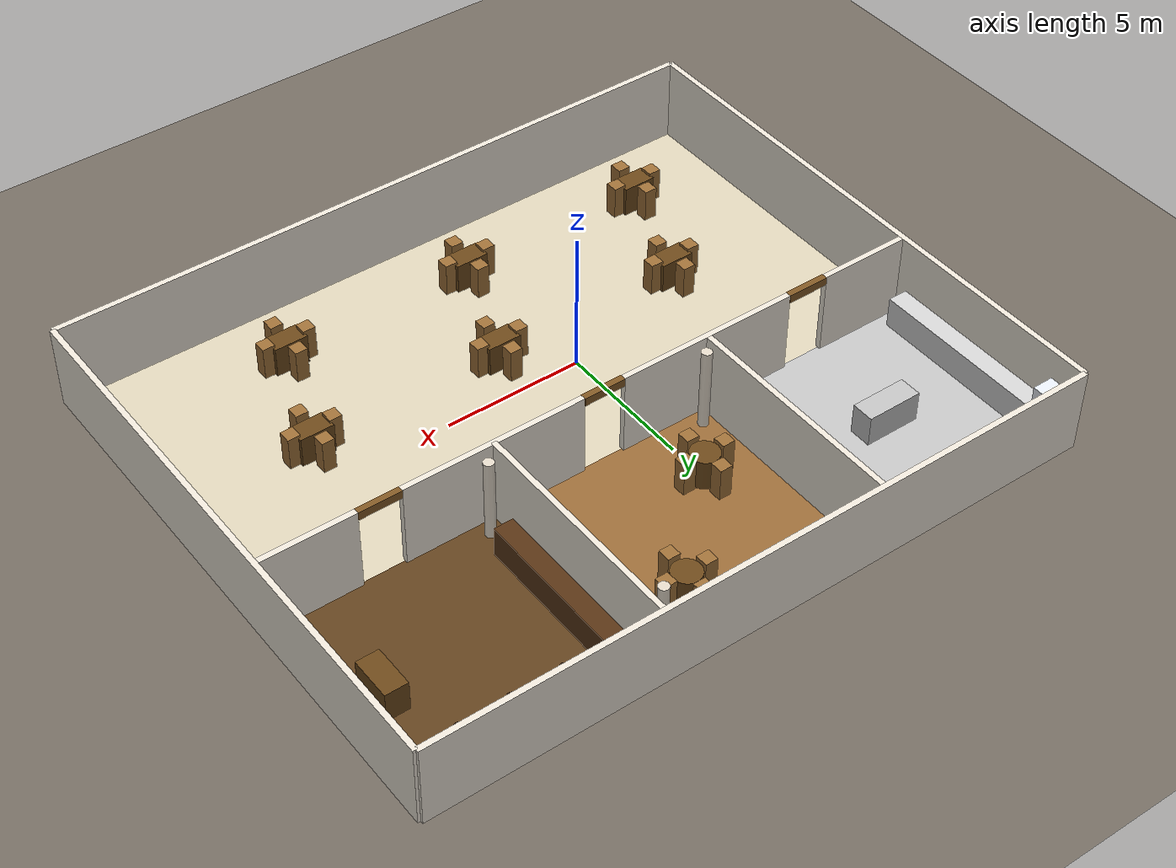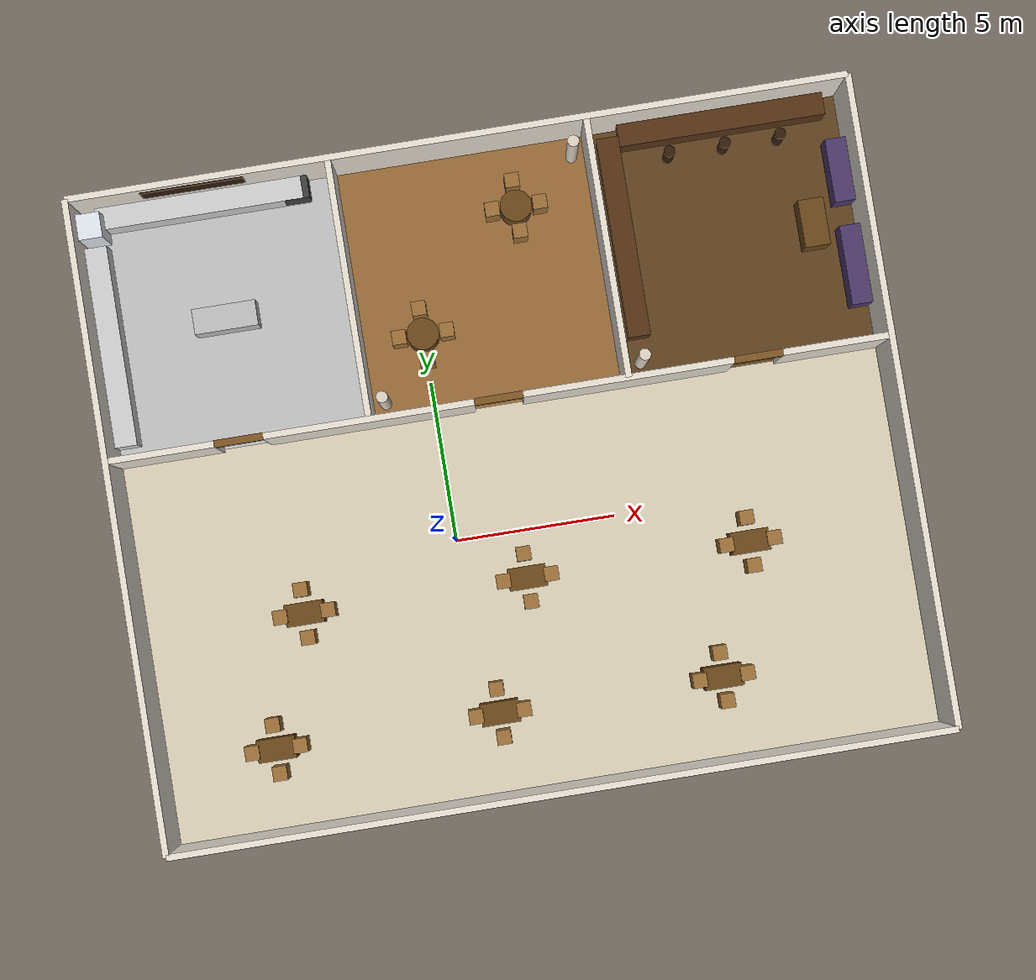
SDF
<?xml version="1.0" ?>
<sdf version="1.6">
  <world name="restaurant_world">

    <physics name="1ms" type="ignored">
      <max_step_size>0.001</max_step_size>
      <real_time_factor>1.0</real_time_factor>
    </physics>

    <plugin filename="ignition-gazebo-physics-system"
            name="ignition::gazebo::systems::Physics"/>
    <plugin filename="ignition-gazebo-user-commands-system"
            name="ignition::gazebo::systems::UserCommands"/>
    <plugin filename="ignition-gazebo-scene-broadcaster-system"
            name="ignition::gazebo::systems::SceneBroadcaster"/>
    <plugin filename="ignition-gazebo-sensors-system"
            name="ignition::gazebo::systems::Sensors">
      <render_engine>ogre2</render_engine>
    </plugin>
    <plugin filename="ignition-gazebo-imu-system"
            name="ignition::gazebo::systems::Imu"/>

    <!-- Sun -->
    <light type="directional" name="sun">
      <cast_shadows>true</cast_shadows>
      <pose>0 0 20 0 0 0</pose>
      <diffuse>0.95 0.92 0.85 1</diffuse>
      <specular>0.4 0.4 0.4 1</specular>
      <attenuation><range>1000</range><constant>0.9</constant>
        <linear>0.01</linear><quadratic>0.001</quadratic></attenuation>
      <direction>-0.4 0.1 -0.9</direction>
    </light>

    <!-- Main dining warm lights -->
    <light name="hall_light_1" type="point">
      <pose>-4 -4 4.5 0 0 0</pose>
      <diffuse>1.0 0.92 0.78 1</diffuse><specular>0.3 0.28 0.20 1</specular>
      <attenuation><range>15</range><constant>0.3</constant>
        <linear>0.04</linear><quadratic>0.008</quadratic></attenuation>
      <cast_shadows>false</cast_shadows>
    </light>
    <light name="hall_light_2" type="point">
      <pose>6 -4 4.5 0 0 0</pose>
      <diffuse>1.0 0.92 0.78 1</diffuse><specular>0.3 0.28 0.20 1</specular>
      <attenuation><range>15</range><constant>0.3</constant>
        <linear>0.04</linear><quadratic>0.008</quadratic></attenuation>
      <cast_shadows>false</cast_shadows>
    </light>

    <!-- Kitchen cool white light -->
    <light name="kitchen_light" type="point">
      <pose>-6 8.0 4.5 0 0 0</pose>
      <diffuse>0.88 0.92 1.0 1</diffuse><specular>0.22 0.24 0.28 1</specular>
      <attenuation><range>12</range><constant>0.4</constant>
        <linear>0.05</linear><quadratic>0.01</quadratic></attenuation>
      <cast_shadows>false</cast_shadows>
    </light>

    <!-- Private dining amber light -->
    <light name="private_light" type="point">
      <pose>2 8.0 4.5 0 0 0</pose>
      <diffuse>1.0 0.85 0.60 1</diffuse><specular>0.25 0.20 0.12 1</specular>
      <attenuation><range>12</range><constant>0.4</constant>
        <linear>0.05</linear><quadratic>0.01</quadratic></attenuation>
      <cast_shadows>false</cast_shadows>
    </light>

    <!-- Lounge dim warm light -->
    <light name="lounge_light" type="point">
      <pose>10 8.0 4.5 0 0 0</pose>
      <diffuse>0.95 0.80 0.55 1</diffuse><specular>0.20 0.16 0.10 1</specular>
      <attenuation><range>12</range><constant>0.4</constant>
        <linear>0.05</linear><quadratic>0.01</quadratic></attenuation>
      <cast_shadows>false</cast_shadows>
    </light>

    <!-- ══ GROUND ══ -->
    <model name="ground_plane"><static>true</static>
      <link name="link">
        <collision name="collision">
          <geometry><plane><normal>0 0 1</normal><size>100 100</size></plane></geometry>
          <surface><friction><ode><mu>50</mu><mu2>50</mu2></ode></friction></surface>
        </collision>
        <visual name="visual">
          <geometry><plane><normal>0 0 1</normal><size>100 100</size></plane></geometry>
          <material><ambient>0.45 0.42 0.38 1</ambient><diffuse>0.45 0.42 0.38 1</diffuse></material>
        </visual>
      </link>
    </model>

    <!-- ══ FLOOR TILES (visual only) ══ -->
    <model name="floor_main"><static>true</static><pose>2 -2 0.002 0 0 0</pose>
      <link name="link"><visual name="v">
        <geometry><box><size>24.0 12.0 0.004</size></box></geometry>
        <material><ambient>0.86 0.82 0.72 1</ambient><diffuse>0.86 0.82 0.72 1</diffuse>
          <specular>0.10 0.10 0.08 1</specular></material>
      </visual></link>
    </model>
    <model name="floor_kitchen"><static>true</static><pose>-6 8.0 0.002 0 0 0</pose>
      <link name="link"><visual name="v">
        <geometry><box><size>8.0 8.0 0.004</size></box></geometry>
        <material><ambient>0.76 0.76 0.76 1</ambient><diffuse>0.76 0.76 0.76 1</diffuse>
          <specular>0.22 0.22 0.22 1</specular></material>
      </visual></link>
    </model>
    <model name="floor_private"><static>true</static><pose>2 8.0 0.002 0 0 0</pose>
      <link name="link"><visual name="v">
        <geometry><box><size>8.0 8.0 0.004</size></box></geometry>
        <material><ambient>0.55 0.38 0.18 1</ambient><diffuse>0.60 0.42 0.22 1</diffuse>
          <specular>0.14 0.10 0.04 1</specular></material>
      </visual></link>
    </model>
    <model name="floor_lounge"><static>true</static><pose>10 8.0 0.002 0 0 0</pose>
      <link name="link"><visual name="v">
        <geometry><box><size>8.0 8.0 0.004</size></box></geometry>
        <material><ambient>0.32 0.22 0.10 1</ambient><diffuse>0.38 0.26 0.12 1</diffuse>
          <specular>0.18 0.12 0.06 1</specular></material>
      </visual></link>
    </model>

    <model name="wall_outer_south"><static>true</static><pose>2 -8.1 1.5 0 0 0</pose>
      <link name="link">
        <collision name="c"><geometry><box><size>24.2 0.2 3.0</size></box></geometry></collision>
        <visual name="v"><geometry><box><size>24.2 0.2 3.0</size></box></geometry>
          <material><ambient>0.92 0.89 0.84 1</ambient><diffuse>0.92 0.89 0.84 1</diffuse>
            <specular>0.08 0.08 0.07 1</specular></material></visual>
      </link>
    </model>
    <model name="wall_outer_north"><static>true</static><pose>2 12.1 1.5 0 0 0</pose>
      <link name="link">
        <collision name="c"><geometry><box><size>24.2 0.2 3.0</size></box></geometry></collision>
        <visual name="v"><geometry><box><size>24.2 0.2 3.0</size></box></geometry>
          <material><ambient>0.92 0.89 0.84 1</ambient><diffuse>0.92 0.89 0.84 1</diffuse>
            <specular>0.08 0.08 0.07 1</specular></material></visual>
      </link>
    </model>
    <model name="wall_outer_west"><static>true</static><pose>-10.1 2.0 1.5 0 0 0</pose>
      <link name="link">
        <collision name="c"><geometry><box><size>0.2 20.2 3.0</size></box></geometry></collision>
        <visual name="v"><geometry><box><size>0.2 20.2 3.0</size></box></geometry>
          <material><ambient>0.92 0.89 0.84 1</ambient><diffuse>0.92 0.89 0.84 1</diffuse>
            <specular>0.08 0.08 0.07 1</specular></material></visual>
      </link>
    </model>
    <model name="wall_outer_east"><static>true</static><pose>14.1 2.0 1.5 0 0 0</pose>
      <link name="link">
        <collision name="c"><geometry><box><size>0.2 20.2 3.0</size></box></geometry></collision>
        <visual name="v"><geometry><box><size>0.2 20.2 3.0</size></box></geometry>
          <material><ambient>0.92 0.89 0.84 1</ambient><diffuse>0.92 0.89 0.84 1</diffuse>
            <specular>0.08 0.08 0.07 1</specular></material></visual>
      </link>
    </model>

    <model name="wall_div_h_s1"><static>true</static><pose>-8.375 4.0 1.5 0 0 0</pose>
      <link name="link">
        <collision name="c"><geometry><box><size>3.25 0.2 3.0</size></box></geometry></collision>
        <visual name="v"><geometry><box><size>3.25 0.2 3.0</size></box></geometry>
          <material><ambient>0.92 0.89 0.84 1</ambient><diffuse>0.92 0.89 0.84 1</diffuse>
            <specular>0.08 0.08 0.07 1</specular></material></visual>
      </link>
    </model>
    <model name="wall_div_h_s2"><static>true</static><pose>-2.0 4.0 1.5 0 0 0</pose>
      <link name="link">
        <collision name="c"><geometry><box><size>6.5 0.2 3.0</size></box></geometry></collision>
        <visual name="v"><geometry><box><size>6.5 0.2 3.0</size></box></geometry>
          <material><ambient>0.92 0.89 0.84 1</ambient><diffuse>0.92 0.89 0.84 1</diffuse>
            <specular>0.08 0.08 0.07 1</specular></material></visual>
      </link>
    </model>
    <model name="wall_div_h_s3"><static>true</static><pose>6.0 4.0 1.5 0 0 0</pose>
      <link name="link">
        <collision name="c"><geometry><box><size>6.5 0.2 3.0</size></box></geometry></collision>
        <visual name="v"><geometry><box><size>6.5 0.2 3.0</size></box></geometry>
          <material><ambient>0.92 0.89 0.84 1</ambient><diffuse>0.92 0.89 0.84 1</diffuse>
            <specular>0.08 0.08 0.07 1</specular></material></visual>
      </link>
    </model>
    <model name="wall_div_h_s4"><static>true</static><pose>12.375 4.0 1.5 0 0 0</pose>
      <link name="link">
        <collision name="c"><geometry><box><size>3.25 0.2 3.0</size></box></geometry></collision>
        <visual name="v"><geometry><box><size>3.25 0.2 3.0</size></box></geometry>
          <material><ambient>0.92 0.89 0.84 1</ambient><diffuse>0.92 0.89 0.84 1</diffuse>
            <specular>0.08 0.08 0.07 1</specular></material></visual>
      </link>
    </model>

    <!-- Door frame headers (wood accent) -->
    <model name="door_hdr_kitchen"><static>true</static><pose>-6.0 4.0 2.85 0 0 0</pose>
      <link name="link"><visual name="v">
        <geometry><box><size>1.5 0.22 0.3</size></box></geometry>
        <material><ambient>0.42 0.28 0.10 1</ambient><diffuse>0.50 0.34 0.14 1</diffuse></material>
      </visual></link>
    </model>
    <model name="door_hdr_private"><static>true</static><pose>2.0 4.0 2.85 0 0 0</pose>
      <link name="link"><visual name="v">
        <geometry><box><size>1.5 0.22 0.3</size></box></geometry>
        <material><ambient>0.42 0.28 0.10 1</ambient><diffuse>0.50 0.34 0.14 1</diffuse></material>
      </visual></link>
    </model>
    <model name="door_hdr_lounge"><static>true</static><pose>10.0 4.0 2.85 0 0 0</pose>
      <link name="link"><visual name="v">
        <geometry><box><size>1.5 0.22 0.3</size></box></geometry>
        <material><ambient>0.42 0.28 0.10 1</ambient><diffuse>0.50 0.34 0.14 1</diffuse></material>
      </visual></link>
    </model>

    <!-- ══ VERTICAL DIVIDERS ══ -->
    <!-- Kitchen | Private  x=-2.0 -->
    <model name="wall_div_v_kp"><static>true</static><pose>-2.0 8.0 1.5 0 0 0</pose>
      <link name="link">
        <collision name="c"><geometry><box><size>0.2 8.0 3.0</size></box></geometry></collision>
        <visual name="v"><geometry><box><size>0.2 8.0 3.0</size></box></geometry>
          <material><ambient>0.92 0.89 0.84 1</ambient><diffuse>0.92 0.89 0.84 1</diffuse>
            <specular>0.08 0.08 0.07 1</specular></material></visual>
      </link>
    </model>
    <!-- Private | Lounge  x=+6.0 -->
    <model name="wall_div_v_pl"><static>true</static><pose>6.0 8.0 1.5 0 0 0</pose>
      <link name="link">
        <collision name="c"><geometry><box><size>0.2 8.0 3.0</size></box></geometry></collision>
        <visual name="v"><geometry><box><size>0.2 8.0 3.0</size></box></geometry>
          <material><ambient>0.92 0.89 0.84 1</ambient><diffuse>0.92 0.89 0.84 1</diffuse>
            <specular>0.08 0.08 0.07 1</specular></material></visual>
      </link>
    </model>

    <!-- ── Row 1  y=-5.5 ── -->
    <!-- Table 1  x=-6.5 -->
    <model name="t1"><static>true</static><pose>-6.5 -5.5 0.55 0 0 0</pose>
      <link name="link">
        <collision name="c"><geometry><box><size>1.2 0.7 1.1</size></box></geometry></collision>
        <visual name="v"><geometry><box><size>1.2 0.7 1.1</size></box></geometry>
          <material><ambient>0.35 0.22 0.08 1</ambient><diffuse>0.42 0.28 0.10 1</diffuse>
            <specular>0.15 0.10 0.04 1</specular></material></visual>
      </link>
    </model>
    <model name="c1n"><static>true</static><pose>-6.5 -4.75 0.6 0 0 0</pose>
      <link name="link">
        <collision name="c"><geometry><box><size>0.45 0.45 1.2</size></box></geometry></collision>
        <visual name="v"><geometry><box><size>0.45 0.45 1.2</size></box></geometry>
          <material><ambient>0.55 0.38 0.18 1</ambient><diffuse>0.62 0.44 0.22 1</diffuse></material></visual>
      </link>
    </model>
    <model name="c1s"><static>true</static><pose>-6.5 -6.25 0.6 0 0 0</pose>
      <link name="link">
        <collision name="c"><geometry><box><size>0.45 0.45 1.2</size></box></geometry></collision>
        <visual name="v"><geometry><box><size>0.45 0.45 1.2</size></box></geometry>
          <material><ambient>0.55 0.38 0.18 1</ambient><diffuse>0.62 0.44 0.22 1</diffuse></material></visual>
      </link>
    </model>
    <model name="c1e"><static>true</static><pose>-5.75 -5.5 0.6 0 0 0</pose>
      <link name="link">
        <collision name="c"><geometry><box><size>0.45 0.45 1.2</size></box></geometry></collision>
        <visual name="v"><geometry><box><size>0.45 0.45 1.2</size></box></geometry>
          <material><ambient>0.55 0.38 0.18 1</ambient><diffuse>0.62 0.44 0.22 1</diffuse></material></visual>
      </link>
    </model>
    <model name="c1w"><static>true</static><pose>-7.25 -5.5 0.6 0 0 0</pose>
      <link name="link">
        <collision name="c"><geometry><box><size>0.45 0.45 1.2</size></box></geometry></collision>
        <visual name="v"><geometry><box><size>0.45 0.45 1.2</size></box></geometry>
          <material><ambient>0.55 0.38 0.18 1</ambient><diffuse>0.62 0.44 0.22 1</diffuse></material></visual>
      </link>
    </model>

    <!-- Table 2  x=0.5 -->
    <model name="t2"><static>true</static><pose>0.5 -5.5 0.55 0 0 0</pose>
      <link name="link">
        <collision name="c"><geometry><box><size>1.2 0.7 1.1</size></box></geometry></collision>
        <visual name="v"><geometry><box><size>1.2 0.7 1.1</size></box></geometry>
          <material><ambient>0.35 0.22 0.08 1</ambient><diffuse>0.42 0.28 0.10 1</diffuse>
            <specular>0.15 0.10 0.04 1</specular></material></visual>
      </link>
    </model>
    <model name="c2n"><static>true</static><pose>0.5 -4.75 0.6 0 0 0</pose>
      <link name="link">
        <collision name="c"><geometry><box><size>0.45 0.45 1.2</size></box></geometry></collision>
        <visual name="v"><geometry><box><size>0.45 0.45 1.2</size></box></geometry>
          <material><ambient>0.55 0.38 0.18 1</ambient><diffuse>0.62 0.44 0.22 1</diffuse></material></visual>
      </link>
    </model>
    <model name="c2s"><static>true</static><pose>0.5 -6.25 0.6 0 0 0</pose>
      <link name="link">
        <collision name="c"><geometry><box><size>0.45 0.45 1.2</size></box></geometry></collision>
        <visual name="v"><geometry><box><size>0.45 0.45 1.2</size></box></geometry>
          <material><ambient>0.55 0.38 0.18 1</ambient><diffuse>0.62 0.44 0.22 1</diffuse></material></visual>
      </link>
    </model>
    <model name="c2e"><static>true</static><pose>1.25 -5.5 0.6 0 0 0</pose>
      <link name="link">
        <collision name="c"><geometry><box><size>0.45 0.45 1.2</size></box></geometry></collision>
        <visual name="v"><geometry><box><size>0.45 0.45 1.2</size></box></geometry>
          <material><ambient>0.55 0.38 0.18 1</ambient><diffuse>0.62 0.44 0.22 1</diffuse></material></visual>
      </link>
    </model>
    <model name="c2w"><static>true</static><pose>-0.25 -5.5 0.6 0 0 0</pose>
      <link name="link">
        <collision name="c"><geometry><box><size>0.45 0.45 1.2</size></box></geometry></collision>
        <visual name="v"><geometry><box><size>0.45 0.45 1.2</size></box></geometry>
          <material><ambient>0.55 0.38 0.18 1</ambient><diffuse>0.62 0.44 0.22 1</diffuse></material></visual>
      </link>
    </model>

    <!-- Table 3  x=7.5 -->
    <model name="t3"><static>true</static><pose>7.5 -5.5 0.55 0 0 0</pose>
      <link name="link">
        <collision name="c"><geometry><box><size>1.2 0.7 1.1</size></box></geometry></collision>
        <visual name="v"><geometry><box><size>1.2 0.7 1.1</size></box></geometry>
          <material><ambient>0.35 0.22 0.08 1</ambient><diffuse>0.42 0.28 0.10 1</diffuse>
            <specular>0.15 0.10 0.04 1</specular></material></visual>
      </link>
    </model>
    <model name="c3n"><static>true</static><pose>7.5 -4.75 0.6 0 0 0</pose>
      <link name="link">
        <collision name="c"><geometry><box><size>0.45 0.45 1.2</size></box></geometry></collision>
        <visual name="v"><geometry><box><size>0.45 0.45 1.2</size></box></geometry>
          <material><ambient>0.55 0.38 0.18 1</ambient><diffuse>0.62 0.44 0.22 1</diffuse></material></visual>
      </link>
    </model>
    <model name="c3s"><static>true</static><pose>7.5 -6.25 0.6 0 0 0</pose>
      <link name="link">
        <collision name="c"><geometry><box><size>0.45 0.45 1.2</size></box></geometry></collision>
        <visual name="v"><geometry><box><size>0.45 0.45 1.2</size></box></geometry>
          <material><ambient>0.55 0.38 0.18 1</ambient><diffuse>0.62 0.44 0.22 1</diffuse></material></visual>
      </link>
    </model>
    <model name="c3e"><static>true</static><pose>8.25 -5.5 0.6 0 0 0</pose>
      <link name="link">
        <collision name="c"><geometry><box><size>0.45 0.45 1.2</size></box></geometry></collision>
        <visual name="v"><geometry><box><size>0.45 0.45 1.2</size></box></geometry>
          <material><ambient>0.55 0.38 0.18 1</ambient><diffuse>0.62 0.44 0.22 1</diffuse></material></visual>
      </link>
    </model>
    <model name="c3w"><static>true</static><pose>6.75 -5.5 0.6 0 0 0</pose>
      <link name="link">
        <collision name="c"><geometry><box><size>0.45 0.45 1.2</size></box></geometry></collision>
        <visual name="v"><geometry><box><size>0.45 0.45 1.2</size></box></geometry>
          <material><ambient>0.55 0.38 0.18 1</ambient><diffuse>0.62 0.44 0.22 1</diffuse></material></visual>
      </link>
    </model>

    <!-- ── Row 2  y=-1.5 ── -->
    <!-- Table 4  x=-5.0 -->
    <model name="t4"><static>true</static><pose>-5.0 -1.5 0.55 0 0 0</pose>
      <link name="link">
        <collision name="c"><geometry><box><size>1.2 0.7 1.1</size></box></geometry></collision>
        <visual name="v"><geometry><box><size>1.2 0.7 1.1</size></box></geometry>
          <material><ambient>0.35 0.22 0.08 1</ambient><diffuse>0.42 0.28 0.10 1</diffuse>
            <specular>0.15 0.10 0.04 1</specular></material></visual>
      </link>
    </model>
    <model name="c4n"><static>true</static><pose>-5.0 -0.75 0.6 0 0 0</pose>
      <link name="link">
        <collision name="c"><geometry><box><size>0.45 0.45 1.2</size></box></geometry></collision>
        <visual name="v"><geometry><box><size>0.45 0.45 1.2</size></box></geometry>
          <material><ambient>0.55 0.38 0.18 1</ambient><diffuse>0.62 0.44 0.22 1</diffuse></material></visual>
      </link>
    </model>
    <model name="c4s"><static>true</static><pose>-5.0 -2.25 0.6 0 0 0</pose>
      <link name="link">
        <collision name="c"><geometry><box><size>0.45 0.45 1.2</size></box></geometry></collision>
        <visual name="v"><geometry><box><size>0.45 0.45 1.2</size></box></geometry>
          <material><ambient>0.55 0.38 0.18 1</ambient><diffuse>0.62 0.44 0.22 1</diffuse></material></visual>
      </link>
    </model>
    <model name="c4e"><static>true</static><pose>-4.25 -1.5 0.6 0 0 0</pose>
      <link name="link">
        <collision name="c"><geometry><box><size>0.45 0.45 1.2</size></box></geometry></collision>
        <visual name="v"><geometry><box><size>0.45 0.45 1.2</size></box></geometry>
          <material><ambient>0.55 0.38 0.18 1</ambient><diffuse>0.62 0.44 0.22 1</diffuse></material></visual>
      </link>
    </model>
    <model name="c4w"><static>true</static><pose>-5.75 -1.5 0.6 0 0 0</pose>
      <link name="link">
        <collision name="c"><geometry><box><size>0.45 0.45 1.2</size></box></geometry></collision>
        <visual name="v"><geometry><box><size>0.45 0.45 1.2</size></box></geometry>
          <material><ambient>0.55 0.38 0.18 1</ambient><diffuse>0.62 0.44 0.22 1</diffuse></material></visual>
      </link>
    </model>

    <!-- Table 5  x=2.0 -->
    <model name="t5"><static>true</static><pose>2.0 -1.5 0.55 0 0 0</pose>
      <link name="link">
        <collision name="c"><geometry><box><size>1.2 0.7 1.1</size></box></geometry></collision>
        <visual name="v"><geometry><box><size>1.2 0.7 1.1</size></box></geometry>
          <material><ambient>0.35 0.22 0.08 1</ambient><diffuse>0.42 0.28 0.10 1</diffuse>
            <specular>0.15 0.10 0.04 1</specular></material></visual>
      </link>
    </model>
    <model name="c5n"><static>true</static><pose>2.0 -0.75 0.6 0 0 0</pose>
      <link name="link">
        <collision name="c"><geometry><box><size>0.45 0.45 1.2</size></box></geometry></collision>
        <visual name="v"><geometry><box><size>0.45 0.45 1.2</size></box></geometry>
          <material><ambient>0.55 0.38 0.18 1</ambient><diffuse>0.62 0.44 0.22 1</diffuse></material></visual>
      </link>
    </model>
    <model name="c5s"><static>true</static><pose>2.0 -2.25 0.6 0 0 0</pose>
      <link name="link">
        <collision name="c"><geometry><box><size>0.45 0.45 1.2</size></box></geometry></collision>
        <visual name="v"><geometry><box><size>0.45 0.45 1.2</size></box></geometry>
          <material><ambient>0.55 0.38 0.18 1</ambient><diffuse>0.62 0.44 0.22 1</diffuse></material></visual>
      </link>
    </model>
    <model name="c5e"><static>true</static><pose>2.75 -1.5 0.6 0 0 0</pose>
      <link name="link">
        <collision name="c"><geometry><box><size>0.45 0.45 1.2</size></box></geometry></collision>
        <visual name="v"><geometry><box><size>0.45 0.45 1.2</size></box></geometry>
          <material><ambient>0.55 0.38 0.18 1</ambient><diffuse>0.62 0.44 0.22 1</diffuse></material></visual>
      </link>
    </model>
    <model name="c5w"><static>true</static><pose>1.25 -1.5 0.6 0 0 0</pose>
      <link name="link">
        <collision name="c"><geometry><box><size>0.45 0.45 1.2</size></box></geometry></collision>
        <visual name="v"><geometry><box><size>0.45 0.45 1.2</size></box></geometry>
          <material><ambient>0.55 0.38 0.18 1</ambient><diffuse>0.62 0.44 0.22 1</diffuse></material></visual>
      </link>
    </model>

    <!-- Table 6  x=9.0 -->
    <model name="t6"><static>true</static><pose>9.0 -1.5 0.55 0 0 0</pose>
      <link name="link">
        <collision name="c"><geometry><box><size>1.2 0.7 1.1</size></box></geometry></collision>
        <visual name="v"><geometry><box><size>1.2 0.7 1.1</size></box></geometry>
          <material><ambient>0.35 0.22 0.08 1</ambient><diffuse>0.42 0.28 0.10 1</diffuse>
            <specular>0.15 0.10 0.04 1</specular></material></visual>
      </link>
    </model>
    <model name="c6n"><static>true</static><pose>9.0 -0.75 0.6 0 0 0</pose>
      <link name="link">
        <collision name="c"><geometry><box><size>0.45 0.45 1.2</size></box></geometry></collision>
        <visual name="v"><geometry><box><size>0.45 0.45 1.2</size></box></geometry>
          <material><ambient>0.55 0.38 0.18 1</ambient><diffuse>0.62 0.44 0.22 1</diffuse></material></visual>
      </link>
    </model>
    <model name="c6s"><static>true</static><pose>9.0 -2.25 0.6 0 0 0</pose>
      <link name="link">
        <collision name="c"><geometry><box><size>0.45 0.45 1.2</size></box></geometry></collision>
        <visual name="v"><geometry><box><size>0.45 0.45 1.2</size></box></geometry>
          <material><ambient>0.55 0.38 0.18 1</ambient><diffuse>0.62 0.44 0.22 1</diffuse></material></visual>
      </link>
    </model>
    <model name="c6e"><static>true</static><pose>9.75 -1.5 0.6 0 0 0</pose>
      <link name="link">
        <collision name="c"><geometry><box><size>0.45 0.45 1.2</size></box></geometry></collision>
        <visual name="v"><geometry><box><size>0.45 0.45 1.2</size></box></geometry>
          <material><ambient>0.55 0.38 0.18 1</ambient><diffuse>0.62 0.44 0.22 1</diffuse></material></visual>
      </link>
    </model>
    <model name="c6w"><static>true</static><pose>8.25 -1.5 0.6 0 0 0</pose>
      <link name="link">
        <collision name="c"><geometry><box><size>0.45 0.45 1.2</size></box></geometry></collision>
        <visual name="v"><geometry><box><size>0.45 0.45 1.2</size></box></geometry>
          <material><ambient>0.55 0.38 0.18 1</ambient><diffuse>0.62 0.44 0.22 1</diffuse></material></visual>
      </link>
    </model>

    <!-- ══════════════════════════════════════════════════════════
         KITCHEN  x[-10,-2]  y[4,12]
    ══════════════════════════════════════════════════════════ -->

    <!-- North counter (against y=12 wall, 6.5 m long) -->
    <model name="k_counter_north"><static>true</static><pose>-6.25 11.65 0.55 0 0 0</pose>
      <link name="link">
        <collision name="c"><geometry><box><size>6.5 0.7 1.1</size></box></geometry></collision>
        <visual name="v"><geometry><box><size>6.5 0.7 1.1</size></box></geometry>
          <material><ambient>0.78 0.78 0.78 1</ambient><diffuse>0.82 0.82 0.82 1</diffuse>
            <specular>0.25 0.25 0.25 1</specular></material></visual>
      </link>
    </model>

    <!-- West counter (against x=-10 wall, 6.3 m long) -->
    <model name="k_counter_west"><static>true</static><pose>-9.65 7.65 0.55 0 0 0</pose>
      <link name="link">
        <collision name="c"><geometry><box><size>0.7 6.3 1.1</size></box></geometry></collision>
        <visual name="v"><geometry><box><size>0.7 6.3 1.1</size></box></geometry>
          <material><ambient>0.78 0.78 0.78 1</ambient><diffuse>0.82 0.82 0.82 1</diffuse>
            <specular>0.25 0.25 0.25 1</specular></material></visual>
      </link>
    </model>

    <!-- Kitchen island (central work surface) -->
    <model name="k_island"><static>true</static><pose>-6.0 8.0 0.55 0 0 0</pose>
      <link name="link">
        <collision name="c"><geometry><box><size>2.0 0.8 1.1</size></box></geometry></collision>
        <visual name="v"><geometry><box><size>2.0 0.8 1.1</size></box></geometry>
          <material><ambient>0.70 0.70 0.70 1</ambient><diffuse>0.75 0.75 0.75 1</diffuse>
            <specular>0.30 0.30 0.30 1</specular></material></visual>
      </link>
    </model>

    <!-- Refrigerator (NW corner, tall) -->
    <model name="k_fridge"><static>true</static><pose>-9.65 11.35 1.0 0 0 0</pose>
      <link name="link">
        <collision name="c"><geometry><box><size>0.8 0.8 2.0</size></box></geometry></collision>
        <visual name="v"><geometry><box><size>0.8 0.8 2.0</size></box></geometry>
          <material><ambient>0.88 0.90 0.92 1</ambient><diffuse>0.90 0.92 0.95 1</diffuse>
            <specular>0.40 0.40 0.42 1</specular></material></visual>
      </link>
    </model>

    <!-- Oven/stove unit -->
    <model name="k_stove"><static>true</static><pose>-3.2 11.65 0.55 0 0 0</pose>
      <link name="link">
        <collision name="c"><geometry><box><size>0.8 0.7 1.1</size></box></geometry></collision>
        <visual name="v"><geometry><box><size>0.8 0.7 1.1</size></box></geometry>
          <material><ambient>0.20 0.20 0.20 1</ambient><diffuse>0.25 0.25 0.25 1</diffuse>
            <specular>0.50 0.50 0.50 1</specular></material></visual>
      </link>
    </model>

    <!-- KITCHEN SIGN — bright panel on north wall inner face -->
    <model name="kitchen_sign"><static>true</static><pose>-6.25 11.98 2.2 0 0 0</pose>
      <link name="link">
        <collision name="c"><geometry><box><size>3.0 0.05 0.7</size></box></geometry></collision>
        <visual name="v"><geometry><box><size>3.0 0.05 0.7</size></box></geometry>
          <material><ambient>0.95 0.35 0.05 1</ambient><diffuse>1.0 0.40 0.05 1</diffuse>
            <specular>0.50 0.20 0.02 1</specular></material></visual>
      </link>
    </model>

    <!-- Kitchen sign label bar (dark backing) -->
    <model name="kitchen_sign_bg"><static>true</static><pose>-6.25 11.97 2.2 0 0 0</pose>
      <link name="link"><visual name="v">
        <geometry><box><size>3.2 0.04 0.9</size></box></geometry>
        <material><ambient>0.15 0.08 0.02 1</ambient><diffuse>0.18 0.10 0.03 1</diffuse></material>
      </visual></link>
    </model>

    <!-- Round table 1 -->
    <model name="pt1"><static>true</static><pose>0.0 6.5 0.55 0 0 0</pose>
      <link name="link">
        <collision name="c"><geometry><cylinder><radius>0.5</radius><length>1.1</length></cylinder></geometry></collision>
        <visual name="v"><geometry><cylinder><radius>0.5</radius><length>1.1</length></cylinder></geometry>
          <material><ambient>0.35 0.22 0.08 1</ambient><diffuse>0.42 0.28 0.10 1</diffuse>
            <specular>0.15 0.10 0.04 1</specular></material></visual>
      </link>
    </model>
    <model name="pc1n"><static>true</static><pose>0.0 7.3 0.6 0 0 0</pose>
      <link name="link">
        <collision name="c"><geometry><box><size>0.45 0.45 1.2</size></box></geometry></collision>
        <visual name="v"><geometry><box><size>0.45 0.45 1.2</size></box></geometry>
          <material><ambient>0.55 0.38 0.18 1</ambient><diffuse>0.62 0.44 0.22 1</diffuse></material></visual>
      </link>
    </model>
    <model name="pc1s"><static>true</static><pose>0.0 5.7 0.6 0 0 0</pose>
      <link name="link">
        <collision name="c"><geometry><box><size>0.45 0.45 1.2</size></box></geometry></collision>
        <visual name="v"><geometry><box><size>0.45 0.45 1.2</size></box></geometry>
          <material><ambient>0.55 0.38 0.18 1</ambient><diffuse>0.62 0.44 0.22 1</diffuse></material></visual>
      </link>
    </model>
    <model name="pc1e"><static>true</static><pose>0.75 6.5 0.6 0 0 0</pose>
      <link name="link">
        <collision name="c"><geometry><box><size>0.45 0.45 1.2</size></box></geometry></collision>
        <visual name="v"><geometry><box><size>0.45 0.45 1.2</size></box></geometry>
          <material><ambient>0.55 0.38 0.18 1</ambient><diffuse>0.62 0.44 0.22 1</diffuse></material></visual>
      </link>
    </model>
    <model name="pc1w"><static>true</static><pose>-0.75 6.5 0.6 0 0 0</pose>
      <link name="link">
        <collision name="c"><geometry><box><size>0.45 0.45 1.2</size></box></geometry></collision>
        <visual name="v"><geometry><box><size>0.45 0.45 1.2</size></box></geometry>
          <material><ambient>0.55 0.38 0.18 1</ambient><diffuse>0.62 0.44 0.22 1</diffuse></material></visual>
      </link>
    </model>

    <!-- Round table 2 -->
    <model name="pt2"><static>true</static><pose>3.5 10.0 0.55 0 0 0</pose>
      <link name="link">
        <collision name="c"><geometry><cylinder><radius>0.5</radius><length>1.1</length></cylinder></geometry></collision>
        <visual name="v"><geometry><cylinder><radius>0.5</radius><length>1.1</length></cylinder></geometry>
          <material><ambient>0.35 0.22 0.08 1</ambient><diffuse>0.42 0.28 0.10 1</diffuse>
            <specular>0.15 0.10 0.04 1</specular></material></visual>
      </link>
    </model>
    <model name="pc2n"><static>true</static><pose>3.5 10.8 0.6 0 0 0</pose>
      <link name="link">
        <collision name="c"><geometry><box><size>0.45 0.45 1.2</size></box></geometry></collision>
        <visual name="v"><geometry><box><size>0.45 0.45 1.2</size></box></geometry>
          <material><ambient>0.55 0.38 0.18 1</ambient><diffuse>0.62 0.44 0.22 1</diffuse></material></visual>
      </link>
    </model>
    <model name="pc2s"><static>true</static><pose>3.5 9.2 0.6 0 0 0</pose>
      <link name="link">
        <collision name="c"><geometry><box><size>0.45 0.45 1.2</size></box></geometry></collision>
        <visual name="v"><geometry><box><size>0.45 0.45 1.2</size></box></geometry>
          <material><ambient>0.55 0.38 0.18 1</ambient><diffuse>0.62 0.44 0.22 1</diffuse></material></visual>
      </link>
    </model>
    <model name="pc2e"><static>true</static><pose>4.25 10.0 0.6 0 0 0</pose>
      <link name="link">
        <collision name="c"><geometry><box><size>0.45 0.45 1.2</size></box></geometry></collision>
        <visual name="v"><geometry><box><size>0.45 0.45 1.2</size></box></geometry>
          <material><ambient>0.55 0.38 0.18 1</ambient><diffuse>0.62 0.44 0.22 1</diffuse></material></visual>
      </link>
    </model>
    <model name="pc2w"><static>true</static><pose>2.75 10.0 0.6 0 0 0</pose>
      <link name="link">
        <collision name="c"><geometry><box><size>0.45 0.45 1.2</size></box></geometry></collision>
        <visual name="v"><geometry><box><size>0.45 0.45 1.2</size></box></geometry>
          <material><ambient>0.55 0.38 0.18 1</ambient><diffuse>0.62 0.44 0.22 1</diffuse></material></visual>
      </link>
    </model>

    <!-- Decorative columns (private dining ambiance) -->
    <model name="col_priv_sw"><static>true</static><pose>-1.5 4.6 1.5 0 0 0</pose>
      <link name="link">
        <collision name="c"><geometry><cylinder><radius>0.18</radius><length>3.0</length></cylinder></geometry></collision>
        <visual name="v"><geometry><cylinder><radius>0.18</radius><length>3.0</length></cylinder></geometry>
          <material><ambient>0.85 0.82 0.76 1</ambient><diffuse>0.88 0.84 0.78 1</diffuse>
            <specular>0.20 0.18 0.14 1</specular></material></visual>
      </link>
    </model>
    <model name="col_priv_ne"><static>true</static><pose>5.5 11.4 1.5 0 0 0</pose>
      <link name="link">
        <collision name="c"><geometry><cylinder><radius>0.18</radius><length>3.0</length></cylinder></geometry></collision>
        <visual name="v"><geometry><cylinder><radius>0.18</radius><length>3.0</length></cylinder></geometry>
          <material><ambient>0.85 0.82 0.76 1</ambient><diffuse>0.88 0.84 0.78 1</diffuse>
            <specular>0.20 0.18 0.14 1</specular></material></visual>
      </link>
    </model>

    <!-- ══════════════════════════════════════════════════════════
         LOUNGE / BAR  x[6,+14]  y[4,12]
    ══════════════════════════════════════════════════════════ -->

    <!-- Bar counter — north wall -->
    <model name="bar_north"><static>true</static><pose>10.25 11.65 0.55 0 0 0</pose>
      <link name="link">
        <collision name="c"><geometry><box><size>6.5 0.7 1.1</size></box></geometry></collision>
        <visual name="v"><geometry><box><size>6.5 0.7 1.1</size></box></geometry>
          <material><ambient>0.28 0.16 0.06 1</ambient><diffuse>0.34 0.20 0.08 1</diffuse>
            <specular>0.20 0.12 0.04 1</specular></material></visual>
      </link>
    </model>

    <!-- Bar counter — west wall (shorter L-arm) -->
    <model name="bar_west"><static>true</static><pose>6.65 8.5 0.55 0 0 0</pose>
      <link name="link">
        <collision name="c"><geometry><box><size>0.7 6.3 1.1</size></box></geometry></collision>
        <visual name="v"><geometry><box><size>0.7 6.3 1.1</size></box></geometry>
          <material><ambient>0.28 0.16 0.06 1</ambient><diffuse>0.34 0.20 0.08 1</diffuse>
            <specular>0.20 0.12 0.04 1</specular></material></visual>
      </link>
    </model>

    <!-- Bar stools (in front of north counter) -->
    <model name="stool_1"><static>true</static><pose>8.5 10.9 0.6 0 0 0</pose>
      <link name="link">
        <collision name="c"><geometry><cylinder><radius>0.18</radius><length>1.2</length></cylinder></geometry></collision>
        <visual name="v"><geometry><cylinder><radius>0.18</radius><length>1.2</length></cylinder></geometry>
          <material><ambient>0.15 0.08 0.03 1</ambient><diffuse>0.20 0.11 0.04 1</diffuse>
            <specular>0.40 0.22 0.08 1</specular></material></visual>
      </link>
    </model>
    <model name="stool_2"><static>true</static><pose>10.25 10.9 0.6 0 0 0</pose>
      <link name="link">
        <collision name="c"><geometry><cylinder><radius>0.18</radius><length>1.2</length></cylinder></geometry></collision>
        <visual name="v"><geometry><cylinder><radius>0.18</radius><length>1.2</length></cylinder></geometry>
          <material><ambient>0.15 0.08 0.03 1</ambient><diffuse>0.20 0.11 0.04 1</diffuse>
            <specular>0.40 0.22 0.08 1</specular></material></visual>
      </link>
    </model>
    <model name="stool_3"><static>true</static><pose>12.0 10.9 0.6 0 0 0</pose>
      <link name="link">
        <collision name="c"><geometry><cylinder><radius>0.18</radius><length>1.2</length></cylinder></geometry></collision>
        <visual name="v"><geometry><cylinder><radius>0.18</radius><length>1.2</length></cylinder></geometry>
          <material><ambient>0.15 0.08 0.03 1</ambient><diffuse>0.20 0.11 0.04 1</diffuse>
            <specular>0.40 0.22 0.08 1</specular></material></visual>
      </link>
    </model>

    <!-- Lounge sofas (against east wall) -->
    <model name="sofa_1"><static>true</static><pose>13.7 6.5 0.55 0 0 0</pose>
      <link name="link">
        <collision name="c"><geometry><box><size>0.7 2.5 1.1</size></box></geometry></collision>
        <visual name="v"><geometry><box><size>0.7 2.5 1.1</size></box></geometry>
          <material><ambient>0.25 0.18 0.35 1</ambient><diffuse>0.30 0.22 0.42 1</diffuse>
            <specular>0.08 0.06 0.12 1</specular></material></visual>
      </link>
    </model>
    <model name="sofa_2"><static>true</static><pose>13.7 9.5 0.55 0 0 0</pose>
      <link name="link">
        <collision name="c"><geometry><box><size>0.7 2.0 1.1</size></box></geometry></collision>
        <visual name="v"><geometry><box><size>0.7 2.0 1.1</size></box></geometry>
          <material><ambient>0.25 0.18 0.35 1</ambient><diffuse>0.30 0.22 0.42 1</diffuse>
            <specular>0.08 0.06 0.12 1</specular></material></visual>
      </link>
    </model>

    <!-- Coffee table in front of sofas -->
    <model name="coffee_table"><static>true</static><pose>12.6 8.0 0.55 0 0 0</pose>
      <link name="link">
        <collision name="c"><geometry><box><size>0.8 1.5 1.1</size></box></geometry></collision>
        <visual name="v"><geometry><box><size>0.8 1.5 1.1</size></box></geometry>
          <material><ambient>0.35 0.22 0.08 1</ambient><diffuse>0.42 0.28 0.10 1</diffuse>
            <specular>0.15 0.10 0.04 1</specular></material></visual>
      </link>
    </model>

    <!-- Lounge decorative column -->
    <model name="col_lounge"><static>true</static><pose>6.6 4.6 1.5 0 0 0</pose>
      <link name="link">
        <collision name="c"><geometry><cylinder><radius>0.18</radius><length>3.0</length></cylinder></geometry></collision>
        <visual name="v"><geometry><cylinder><radius>0.18</radius><length>3.0</length></cylinder></geometry>
          <material><ambient>0.85 0.82 0.76 1</ambient><diffuse>0.88 0.84 0.78 1</diffuse>
            <specular>0.20 0.18 0.14 1</specular></material></visual>
      </link>
    </model>

  </world>
</sdf>
